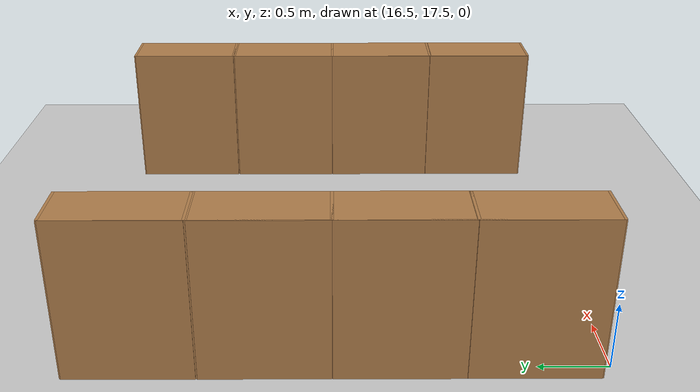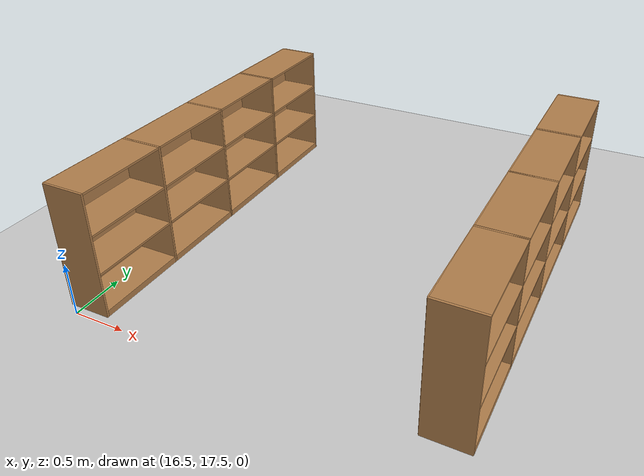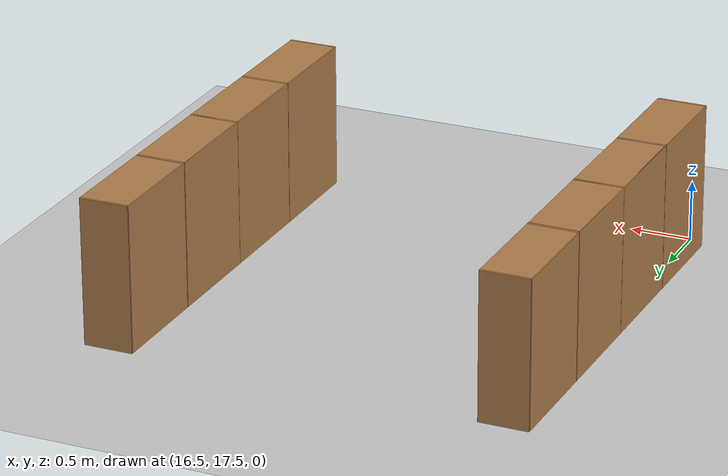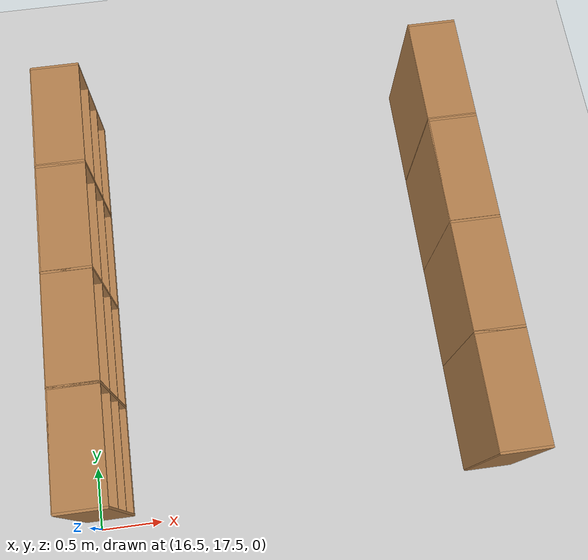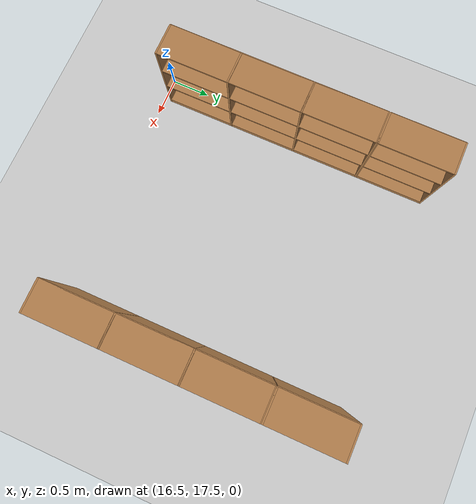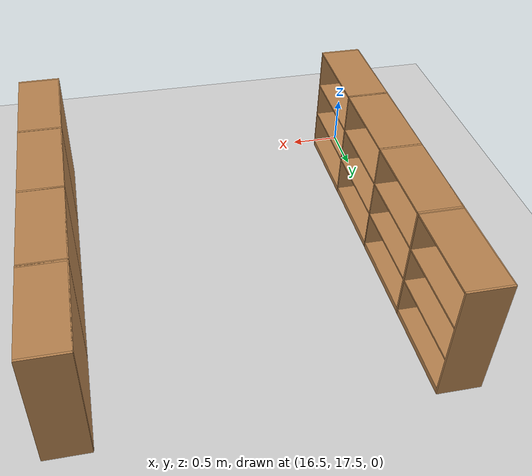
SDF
<sdf version="1.6">
 <world name="default">
  <model name="ground_plane">
   <static>1</static>
   <link name="link">
    <collision name="collision">
     <geometry><plane><normal>0 0 1</normal><size>100 100</size></plane></geometry>
     <surface><friction><ode><mu>100</mu><mu2>50</mu2></ode></friction></surface>
    </collision>
    <visual name="visual">
     <cast_shadows>0</cast_shadows>
     <geometry><plane><normal>0 0 1</normal><size>100 100</size></plane></geometry>
     <material>
      <script><uri>file://media/materials/scripts/gazebo.material</uri><name>Gazebo/Grey</name></script>
     </material>
    </visual>
   </link>
  </model>
  <model name="Bookself-4_clone_14">
   <model name="Bookself-3">
    <model name="bookshelf_0">
     <static>1</static>
     <link name="link">
      <inertial><mass>1</mass></inertial>
      <collision name="back">
       <pose>0 0.005 0.6 0 -0 0</pose>
       <geometry><box><size>0.9 0.01 1.2</size></box></geometry>
      </collision>
      <visual name="visual1">
       <pose>0 0.005 0.6 0 -0 0</pose>
       <geometry><box><size>0.9 0.01 1.2</size></box></geometry>
       <material>
        <script><uri>file://media/materials/scripts/gazebo.material</uri><name>Gazebo/Wood</name></script>
       </material>
      </visual>
      <collision name="left_side">
       <pose>0.45 -0.195 0.6 0 -0 0</pose>
       <geometry><box><size>0.02 0.4 1.2</size></box></geometry>
      </collision>
      <visual name="visual2">
       <pose>0.45 -0.195 0.6 0 -0 0</pose>
       <geometry><box><size>0.02 0.4 1.2</size></box></geometry>
       <material>
        <script><uri>file://media/materials/scripts/gazebo.material</uri><name>Gazebo/Wood</name></script>
       </material>
      </visual>
      <collision name="right_side">
       <pose>-0.45 -0.195 0.6 0 -0 0</pose>
       <geometry><box><size>0.02 0.4 1.2</size></box></geometry>
      </collision>
      <visual name="visual3">
       <pose>-0.45 -0.195 0.6 0 -0 0</pose>
       <geometry><box><size>0.02 0.4 1.2</size></box></geometry>
       <material>
        <script><uri>file://media/materials/scripts/gazebo.material</uri><name>Gazebo/Wood</name></script>
       </material>
      </visual>
      <collision name="bottom">
       <pose>0 -0.195 0.03 0 -0 0</pose>
       <geometry><box><size>0.88 0.4 0.06</size></box></geometry>
      </collision>
      <visual name="visual4">
       <pose>0 -0.195 0.03 0 -0 0</pose>
       <geometry><box><size>0.88 0.4 0.06</size></box></geometry>
       <material>
        <script><uri>file://media/materials/scripts/gazebo.material</uri><name>Gazebo/Wood</name></script>
       </material>
      </visual>
      <collision name="top">
       <pose>0 -0.195 1.19 0 -0 0</pose>
       <geometry><box><size>0.88 0.4 0.02</size></box></geometry>
      </collision>
      <visual name="visual5">
       <pose>0 -0.195 1.19 0 -0 0</pose>
       <geometry><box><size>0.88 0.4 0.02</size></box></geometry>
       <material>
        <script><uri>file://media/materials/scripts/gazebo.material</uri><name>Gazebo/Wood</name></script>
       </material>
      </visual>
      <collision name="low_shelf">
       <pose>0 -0.195 0.43 0 -0 0</pose>
       <geometry><box><size>0.88 0.4 0.02</size></box></geometry>
      </collision>
      <visual name="visual6">
       <pose>0 -0.195 0.43 0 -0 0</pose>
       <geometry><box><size>0.88 0.4 0.02</size></box></geometry>
       <material>
        <script><uri>file://media/materials/scripts/gazebo.material</uri><name>Gazebo/Wood</name></script>
       </material>
      </visual>
      <collision name="high_shelf">
       <pose>0 -0.195 0.8 0 -0 0</pose>
       <geometry><box><size>0.88 0.4 0.02</size></box></geometry>
      </collision>
      <visual name="visual7">
       <pose>0 -0.195 0.8 0 -0 0</pose>
       <geometry><box><size>0.88 0.4 0.02</size></box></geometry>
       <material>
        <script><uri>file://media/materials/scripts/gazebo.material</uri><name>Gazebo/Wood</name></script>
       </material>
      </visual>
     </link>
     <pose>-0.903039 0 0 0 -0 0</pose>
    </model>
    <model name="bookshelf_1">
     <static>1</static>
     <link name="link">
      <inertial><mass>1</mass></inertial>
      <collision name="back">
       <pose>0 0.005 0.6 0 -0 0</pose>
       <geometry><box><size>0.9 0.01 1.2</size></box></geometry>
      </collision>
      <visual name="visual1">
       <pose>0 0.005 0.6 0 -0 0</pose>
       <geometry><box><size>0.9 0.01 1.2</size></box></geometry>
       <material>
        <script><uri>file://media/materials/scripts/gazebo.material</uri><name>Gazebo/Wood</name></script>
       </material>
      </visual>
      <collision name="left_side">
       <pose>0.45 -0.195 0.6 0 -0 0</pose>
       <geometry><box><size>0.02 0.4 1.2</size></box></geometry>
      </collision>
      <visual name="visual2">
       <pose>0.45 -0.195 0.6 0 -0 0</pose>
       <geometry><box><size>0.02 0.4 1.2</size></box></geometry>
       <material>
        <script><uri>file://media/materials/scripts/gazebo.material</uri><name>Gazebo/Wood</name></script>
       </material>
      </visual>
      <collision name="right_side">
       <pose>-0.45 -0.195 0.6 0 -0 0</pose>
       <geometry><box><size>0.02 0.4 1.2</size></box></geometry>
      </collision>
      <visual name="visual3">
       <pose>-0.45 -0.195 0.6 0 -0 0</pose>
       <geometry><box><size>0.02 0.4 1.2</size></box></geometry>
       <material>
        <script><uri>file://media/materials/scripts/gazebo.material</uri><name>Gazebo/Wood</name></script>
       </material>
      </visual>
      <collision name="bottom">
       <pose>0 -0.195 0.03 0 -0 0</pose>
       <geometry><box><size>0.88 0.4 0.06</size></box></geometry>
      </collision>
      <visual name="visual4">
       <pose>0 -0.195 0.03 0 -0 0</pose>
       <geometry><box><size>0.88 0.4 0.06</size></box></geometry>
       <material>
        <script><uri>file://media/materials/scripts/gazebo.material</uri><name>Gazebo/Wood</name></script>
       </material>
      </visual>
      <collision name="top">
       <pose>0 -0.195 1.19 0 -0 0</pose>
       <geometry><box><size>0.88 0.4 0.02</size></box></geometry>
      </collision>
      <visual name="visual5">
       <pose>0 -0.195 1.19 0 -0 0</pose>
       <geometry><box><size>0.88 0.4 0.02</size></box></geometry>
       <material>
        <script><uri>file://media/materials/scripts/gazebo.material</uri><name>Gazebo/Wood</name></script>
       </material>
      </visual>
      <collision name="low_shelf">
       <pose>0 -0.195 0.43 0 -0 0</pose>
       <geometry><box><size>0.88 0.4 0.02</size></box></geometry>
      </collision>
      <visual name="visual6">
       <pose>0 -0.195 0.43 0 -0 0</pose>
       <geometry><box><size>0.88 0.4 0.02</size></box></geometry>
       <material>
        <script><uri>file://media/materials/scripts/gazebo.material</uri><name>Gazebo/Wood</name></script>
       </material>
      </visual>
      <collision name="high_shelf">
       <pose>0 -0.195 0.8 0 -0 0</pose>
       <geometry><box><size>0.88 0.4 0.02</size></box></geometry>
      </collision>
      <visual name="visual7">
       <pose>0 -0.195 0.8 0 -0 0</pose>
       <geometry><box><size>0.88 0.4 0.02</size></box></geometry>
       <material>
        <script><uri>file://media/materials/scripts/gazebo.material</uri><name>Gazebo/Wood</name></script>
       </material>
      </visual>
     </link>
     <pose>0.000535 0 0 0 -0 0</pose>
    </model>
    <model name="bookshelf_1_clone">
     <static>1</static>
     <link name="link">
      <inertial><mass>1</mass></inertial>
      <collision name="back">
       <pose>0 0.005 0.6 0 -0 0</pose>
       <geometry><box><size>0.9 0.01 1.2</size></box></geometry>
      </collision>
      <visual name="visual1">
       <pose>0 0.005 0.6 0 -0 0</pose>
       <geometry><box><size>0.9 0.01 1.2</size></box></geometry>
       <material>
        <script><uri>file://media/materials/scripts/gazebo.material</uri><name>Gazebo/Wood</name></script>
       </material>
      </visual>
      <collision name="left_side">
       <pose>0.45 -0.195 0.6 0 -0 0</pose>
       <geometry><box><size>0.02 0.4 1.2</size></box></geometry>
      </collision>
      <visual name="visual2">
       <pose>0.45 -0.195 0.6 0 -0 0</pose>
       <geometry><box><size>0.02 0.4 1.2</size></box></geometry>
       <material>
        <script><uri>file://media/materials/scripts/gazebo.material</uri><name>Gazebo/Wood</name></script>
       </material>
      </visual>
      <collision name="right_side">
       <pose>-0.45 -0.195 0.6 0 -0 0</pose>
       <geometry><box><size>0.02 0.4 1.2</size></box></geometry>
      </collision>
      <visual name="visual3">
       <pose>-0.45 -0.195 0.6 0 -0 0</pose>
       <geometry><box><size>0.02 0.4 1.2</size></box></geometry>
       <material>
        <script><uri>file://media/materials/scripts/gazebo.material</uri><name>Gazebo/Wood</name></script>
       </material>
      </visual>
      <collision name="bottom">
       <pose>0 -0.195 0.03 0 -0 0</pose>
       <geometry><box><size>0.88 0.4 0.06</size></box></geometry>
      </collision>
      <visual name="visual4">
       <pose>0 -0.195 0.03 0 -0 0</pose>
       <geometry><box><size>0.88 0.4 0.06</size></box></geometry>
       <material>
        <script><uri>file://media/materials/scripts/gazebo.material</uri><name>Gazebo/Wood</name></script>
       </material>
      </visual>
      <collision name="top">
       <pose>0 -0.195 1.19 0 -0 0</pose>
       <geometry><box><size>0.88 0.4 0.02</size></box></geometry>
      </collision>
      <visual name="visual5">
       <pose>0 -0.195 1.19 0 -0 0</pose>
       <geometry><box><size>0.88 0.4 0.02</size></box></geometry>
       <material>
        <script><uri>file://media/materials/scripts/gazebo.material</uri><name>Gazebo/Wood</name></script>
       </material>
      </visual>
      <collision name="low_shelf">
       <pose>0 -0.195 0.43 0 -0 0</pose>
       <geometry><box><size>0.88 0.4 0.02</size></box></geometry>
      </collision>
      <visual name="visual6">
       <pose>0 -0.195 0.43 0 -0 0</pose>
       <geometry><box><size>0.88 0.4 0.02</size></box></geometry>
       <material>
        <script><uri>file://media/materials/scripts/gazebo.material</uri><name>Gazebo/Wood</name></script>
       </material>
      </visual>
      <collision name="high_shelf">
       <pose>0 -0.195 0.8 0 -0 0</pose>
       <geometry><box><size>0.88 0.4 0.02</size></box></geometry>
      </collision>
      <visual name="visual7">
       <pose>0 -0.195 0.8 0 -0 0</pose>
       <geometry><box><size>0.88 0.4 0.02</size></box></geometry>
       <material>
        <script><uri>file://media/materials/scripts/gazebo.material</uri><name>Gazebo/Wood</name></script>
       </material>
      </visual>
     </link>
     <pose>0.902502 0 0 0 -0 0</pose>
    </model>
    <static>1</static>
    <pose>-0.906894 3e-05 0 0 -0 0</pose>
   </model>
   <model name="bookshelf">
    <static>1</static>
    <link name="link">
     <inertial><mass>1</mass></inertial>
     <collision name="back">
      <pose>0 0.005 0.6 0 -0 0</pose>
      <geometry><box><size>0.9 0.01 1.2</size></box></geometry>
     </collision>
     <visual name="visual1">
      <pose>0 0.005 0.6 0 -0 0</pose>
      <geometry><box><size>0.9 0.01 1.2</size></box></geometry>
      <material>
       <script><uri>file://media/materials/scripts/gazebo.material</uri><name>Gazebo/Wood</name></script>
      </material>
     </visual>
     <collision name="left_side">
      <pose>0.45 -0.195 0.6 0 -0 0</pose>
      <geometry><box><size>0.02 0.4 1.2</size></box></geometry>
     </collision>
     <visual name="visual2">
      <pose>0.45 -0.195 0.6 0 -0 0</pose>
      <geometry><box><size>0.02 0.4 1.2</size></box></geometry>
      <material>
       <script><uri>file://media/materials/scripts/gazebo.material</uri><name>Gazebo/Wood</name></script>
      </material>
     </visual>
     <collision name="right_side">
      <pose>-0.45 -0.195 0.6 0 -0 0</pose>
      <geometry><box><size>0.02 0.4 1.2</size></box></geometry>
     </collision>
     <visual name="visual3">
      <pose>-0.45 -0.195 0.6 0 -0 0</pose>
      <geometry><box><size>0.02 0.4 1.2</size></box></geometry>
      <material>
       <script><uri>file://media/materials/scripts/gazebo.material</uri><name>Gazebo/Wood</name></script>
      </material>
     </visual>
     <collision name="bottom">
      <pose>0 -0.195 0.03 0 -0 0</pose>
      <geometry><box><size>0.88 0.4 0.06</size></box></geometry>
     </collision>
     <visual name="visual4">
      <pose>0 -0.195 0.03 0 -0 0</pose>
      <geometry><box><size>0.88 0.4 0.06</size></box></geometry>
      <material>
       <script><uri>file://media/materials/scripts/gazebo.material</uri><name>Gazebo/Wood</name></script>
      </material>
     </visual>
     <collision name="top">
      <pose>0 -0.195 1.19 0 -0 0</pose>
      <geometry><box><size>0.88 0.4 0.02</size></box></geometry>
     </collision>
     <visual name="visual5">
      <pose>0 -0.195 1.19 0 -0 0</pose>
      <geometry><box><size>0.88 0.4 0.02</size></box></geometry>
      <material>
       <script><uri>file://media/materials/scripts/gazebo.material</uri><name>Gazebo/Wood</name></script>
      </material>
     </visual>
     <collision name="low_shelf">
      <pose>0 -0.195 0.43 0 -0 0</pose>
      <geometry><box><size>0.88 0.4 0.02</size></box></geometry>
     </collision>
     <visual name="visual6">
      <pose>0 -0.195 0.43 0 -0 0</pose>
      <geometry><box><size>0.88 0.4 0.02</size></box></geometry>
      <material>
       <script><uri>file://media/materials/scripts/gazebo.material</uri><name>Gazebo/Wood</name></script>
      </material>
     </visual>
     <collision name="high_shelf">
      <pose>0 -0.195 0.8 0 -0 0</pose>
      <geometry><box><size>0.88 0.4 0.02</size></box></geometry>
     </collision>
     <visual name="visual7">
      <pose>0 -0.195 0.8 0 -0 0</pose>
      <geometry><box><size>0.88 0.4 0.02</size></box></geometry>
      <material>
       <script><uri>file://media/materials/scripts/gazebo.material</uri><name>Gazebo/Wood</name></script>
      </material>
     </visual>
    </link>
    <pose>0.906808 3e-05 0 0 -0 0</pose>
   </model>
   <static>0</static>
   <pose>19.5922 19.8438 0 0 -0 1.5707</pose>
  </model>
  <model name="Bookself-4_clone_14_clone">
   <model name="Bookself-3">
    <model name="bookshelf_0">
     <static>1</static>
     <link name="link">
      <inertial><mass>1</mass></inertial>
      <collision name="back">
       <pose>0 0.005 0.6 0 -0 0</pose>
       <geometry><box><size>0.9 0.01 1.2</size></box></geometry>
      </collision>
      <visual name="visual1">
       <pose>0 0.005 0.6 0 -0 0</pose>
       <geometry><box><size>0.9 0.01 1.2</size></box></geometry>
       <material>
        <script><uri>file://media/materials/scripts/gazebo.material</uri><name>Gazebo/Wood</name></script>
       </material>
      </visual>
      <collision name="left_side">
       <pose>0.45 -0.195 0.6 0 -0 0</pose>
       <geometry><box><size>0.02 0.4 1.2</size></box></geometry>
      </collision>
      <visual name="visual2">
       <pose>0.45 -0.195 0.6 0 -0 0</pose>
       <geometry><box><size>0.02 0.4 1.2</size></box></geometry>
       <material>
        <script><uri>file://media/materials/scripts/gazebo.material</uri><name>Gazebo/Wood</name></script>
       </material>
      </visual>
      <collision name="right_side">
       <pose>-0.45 -0.195 0.6 0 -0 0</pose>
       <geometry><box><size>0.02 0.4 1.2</size></box></geometry>
      </collision>
      <visual name="visual3">
       <pose>-0.45 -0.195 0.6 0 -0 0</pose>
       <geometry><box><size>0.02 0.4 1.2</size></box></geometry>
       <material>
        <script><uri>file://media/materials/scripts/gazebo.material</uri><name>Gazebo/Wood</name></script>
       </material>
      </visual>
      <collision name="bottom">
       <pose>0 -0.195 0.03 0 -0 0</pose>
       <geometry><box><size>0.88 0.4 0.06</size></box></geometry>
      </collision>
      <visual name="visual4">
       <pose>0 -0.195 0.03 0 -0 0</pose>
       <geometry><box><size>0.88 0.4 0.06</size></box></geometry>
       <material>
        <script><uri>file://media/materials/scripts/gazebo.material</uri><name>Gazebo/Wood</name></script>
       </material>
      </visual>
      <collision name="top">
       <pose>0 -0.195 1.19 0 -0 0</pose>
       <geometry><box><size>0.88 0.4 0.02</size></box></geometry>
      </collision>
      <visual name="visual5">
       <pose>0 -0.195 1.19 0 -0 0</pose>
       <geometry><box><size>0.88 0.4 0.02</size></box></geometry>
       <material>
        <script><uri>file://media/materials/scripts/gazebo.material</uri><name>Gazebo/Wood</name></script>
       </material>
      </visual>
      <collision name="low_shelf">
       <pose>0 -0.195 0.43 0 -0 0</pose>
       <geometry><box><size>0.88 0.4 0.02</size></box></geometry>
      </collision>
      <visual name="visual6">
       <pose>0 -0.195 0.43 0 -0 0</pose>
       <geometry><box><size>0.88 0.4 0.02</size></box></geometry>
       <material>
        <script><uri>file://media/materials/scripts/gazebo.material</uri><name>Gazebo/Wood</name></script>
       </material>
      </visual>
      <collision name="high_shelf">
       <pose>0 -0.195 0.8 0 -0 0</pose>
       <geometry><box><size>0.88 0.4 0.02</size></box></geometry>
      </collision>
      <visual name="visual7">
       <pose>0 -0.195 0.8 0 -0 0</pose>
       <geometry><box><size>0.88 0.4 0.02</size></box></geometry>
       <material>
        <script><uri>file://media/materials/scripts/gazebo.material</uri><name>Gazebo/Wood</name></script>
       </material>
      </visual>
     </link>
     <pose>-0.903039 0 0 0 -0 0</pose>
    </model>
    <model name="bookshelf_1">
     <static>1</static>
     <link name="link">
      <inertial><mass>1</mass></inertial>
      <collision name="back">
       <pose>0 0.005 0.6 0 -0 0</pose>
       <geometry><box><size>0.9 0.01 1.2</size></box></geometry>
      </collision>
      <visual name="visual1">
       <pose>0 0.005 0.6 0 -0 0</pose>
       <geometry><box><size>0.9 0.01 1.2</size></box></geometry>
       <material>
        <script><uri>file://media/materials/scripts/gazebo.material</uri><name>Gazebo/Wood</name></script>
       </material>
      </visual>
      <collision name="left_side">
       <pose>0.45 -0.195 0.6 0 -0 0</pose>
       <geometry><box><size>0.02 0.4 1.2</size></box></geometry>
      </collision>
      <visual name="visual2">
       <pose>0.45 -0.195 0.6 0 -0 0</pose>
       <geometry><box><size>0.02 0.4 1.2</size></box></geometry>
       <material>
        <script><uri>file://media/materials/scripts/gazebo.material</uri><name>Gazebo/Wood</name></script>
       </material>
      </visual>
      <collision name="right_side">
       <pose>-0.45 -0.195 0.6 0 -0 0</pose>
       <geometry><box><size>0.02 0.4 1.2</size></box></geometry>
      </collision>
      <visual name="visual3">
       <pose>-0.45 -0.195 0.6 0 -0 0</pose>
       <geometry><box><size>0.02 0.4 1.2</size></box></geometry>
       <material>
        <script><uri>file://media/materials/scripts/gazebo.material</uri><name>Gazebo/Wood</name></script>
       </material>
      </visual>
      <collision name="bottom">
       <pose>0 -0.195 0.03 0 -0 0</pose>
       <geometry><box><size>0.88 0.4 0.06</size></box></geometry>
      </collision>
      <visual name="visual4">
       <pose>0 -0.195 0.03 0 -0 0</pose>
       <geometry><box><size>0.88 0.4 0.06</size></box></geometry>
       <material>
        <script><uri>file://media/materials/scripts/gazebo.material</uri><name>Gazebo/Wood</name></script>
       </material>
      </visual>
      <collision name="top">
       <pose>0 -0.195 1.19 0 -0 0</pose>
       <geometry><box><size>0.88 0.4 0.02</size></box></geometry>
      </collision>
      <visual name="visual5">
       <pose>0 -0.195 1.19 0 -0 0</pose>
       <geometry><box><size>0.88 0.4 0.02</size></box></geometry>
       <material>
        <script><uri>file://media/materials/scripts/gazebo.material</uri><name>Gazebo/Wood</name></script>
       </material>
      </visual>
      <collision name="low_shelf">
       <pose>0 -0.195 0.43 0 -0 0</pose>
       <geometry><box><size>0.88 0.4 0.02</size></box></geometry>
      </collision>
      <visual name="visual6">
       <pose>0 -0.195 0.43 0 -0 0</pose>
       <geometry><box><size>0.88 0.4 0.02</size></box></geometry>
       <material>
        <script><uri>file://media/materials/scripts/gazebo.material</uri><name>Gazebo/Wood</name></script>
       </material>
      </visual>
      <collision name="high_shelf">
       <pose>0 -0.195 0.8 0 -0 0</pose>
       <geometry><box><size>0.88 0.4 0.02</size></box></geometry>
      </collision>
      <visual name="visual7">
       <pose>0 -0.195 0.8 0 -0 0</pose>
       <geometry><box><size>0.88 0.4 0.02</size></box></geometry>
       <material>
        <script><uri>file://media/materials/scripts/gazebo.material</uri><name>Gazebo/Wood</name></script>
       </material>
      </visual>
     </link>
     <pose>0.000535 0 0 0 -0 0</pose>
    </model>
    <model name="bookshelf_1_clone">
     <static>1</static>
     <link name="link">
      <inertial><mass>1</mass></inertial>
      <collision name="back">
       <pose>0 0.005 0.6 0 -0 0</pose>
       <geometry><box><size>0.9 0.01 1.2</size></box></geometry>
      </collision>
      <visual name="visual1">
       <pose>0 0.005 0.6 0 -0 0</pose>
       <geometry><box><size>0.9 0.01 1.2</size></box></geometry>
       <material>
        <script><uri>file://media/materials/scripts/gazebo.material</uri><name>Gazebo/Wood</name></script>
       </material>
      </visual>
      <collision name="left_side">
       <pose>0.45 -0.195 0.6 0 -0 0</pose>
       <geometry><box><size>0.02 0.4 1.2</size></box></geometry>
      </collision>
      <visual name="visual2">
       <pose>0.45 -0.195 0.6 0 -0 0</pose>
       <geometry><box><size>0.02 0.4 1.2</size></box></geometry>
       <material>
        <script><uri>file://media/materials/scripts/gazebo.material</uri><name>Gazebo/Wood</name></script>
       </material>
      </visual>
      <collision name="right_side">
       <pose>-0.45 -0.195 0.6 0 -0 0</pose>
       <geometry><box><size>0.02 0.4 1.2</size></box></geometry>
      </collision>
      <visual name="visual3">
       <pose>-0.45 -0.195 0.6 0 -0 0</pose>
       <geometry><box><size>0.02 0.4 1.2</size></box></geometry>
       <material>
        <script><uri>file://media/materials/scripts/gazebo.material</uri><name>Gazebo/Wood</name></script>
       </material>
      </visual>
      <collision name="bottom">
       <pose>0 -0.195 0.03 0 -0 0</pose>
       <geometry><box><size>0.88 0.4 0.06</size></box></geometry>
      </collision>
      <visual name="visual4">
       <pose>0 -0.195 0.03 0 -0 0</pose>
       <geometry><box><size>0.88 0.4 0.06</size></box></geometry>
       <material>
        <script><uri>file://media/materials/scripts/gazebo.material</uri><name>Gazebo/Wood</name></script>
       </material>
      </visual>
      <collision name="top">
       <pose>0 -0.195 1.19 0 -0 0</pose>
       <geometry><box><size>0.88 0.4 0.02</size></box></geometry>
      </collision>
      <visual name="visual5">
       <pose>0 -0.195 1.19 0 -0 0</pose>
       <geometry><box><size>0.88 0.4 0.02</size></box></geometry>
       <material>
        <script><uri>file://media/materials/scripts/gazebo.material</uri><name>Gazebo/Wood</name></script>
       </material>
      </visual>
      <collision name="low_shelf">
       <pose>0 -0.195 0.43 0 -0 0</pose>
       <geometry><box><size>0.88 0.4 0.02</size></box></geometry>
      </collision>
      <visual name="visual6">
       <pose>0 -0.195 0.43 0 -0 0</pose>
       <geometry><box><size>0.88 0.4 0.02</size></box></geometry>
       <material>
        <script><uri>file://media/materials/scripts/gazebo.material</uri><name>Gazebo/Wood</name></script>
       </material>
      </visual>
      <collision name="high_shelf">
       <pose>0 -0.195 0.8 0 -0 0</pose>
       <geometry><box><size>0.88 0.4 0.02</size></box></geometry>
      </collision>
      <visual name="visual7">
       <pose>0 -0.195 0.8 0 -0 0</pose>
       <geometry><box><size>0.88 0.4 0.02</size></box></geometry>
       <material>
        <script><uri>file://media/materials/scripts/gazebo.material</uri><name>Gazebo/Wood</name></script>
       </material>
      </visual>
     </link>
     <pose>0.902502 0 0 0 -0 0</pose>
    </model>
    <static>1</static>
    <pose>-0.906894 3e-05 0 0 -0 0</pose>
   </model>
   <model name="bookshelf">
    <static>1</static>
    <link name="link">
     <inertial><mass>1</mass></inertial>
     <collision name="back">
      <pose>0 0.005 0.6 0 -0 0</pose>
      <geometry><box><size>0.9 0.01 1.2</size></box></geometry>
     </collision>
     <visual name="visual1">
      <pose>0 0.005 0.6 0 -0 0</pose>
      <geometry><box><size>0.9 0.01 1.2</size></box></geometry>
      <material>
       <script><uri>file://media/materials/scripts/gazebo.material</uri><name>Gazebo/Wood</name></script>
      </material>
     </visual>
     <collision name="left_side">
      <pose>0.45 -0.195 0.6 0 -0 0</pose>
      <geometry><box><size>0.02 0.4 1.2</size></box></geometry>
     </collision>
     <visual name="visual2">
      <pose>0.45 -0.195 0.6 0 -0 0</pose>
      <geometry><box><size>0.02 0.4 1.2</size></box></geometry>
      <material>
       <script><uri>file://media/materials/scripts/gazebo.material</uri><name>Gazebo/Wood</name></script>
      </material>
     </visual>
     <collision name="right_side">
      <pose>-0.45 -0.195 0.6 0 -0 0</pose>
      <geometry><box><size>0.02 0.4 1.2</size></box></geometry>
     </collision>
     <visual name="visual3">
      <pose>-0.45 -0.195 0.6 0 -0 0</pose>
      <geometry><box><size>0.02 0.4 1.2</size></box></geometry>
      <material>
       <script><uri>file://media/materials/scripts/gazebo.material</uri><name>Gazebo/Wood</name></script>
      </material>
     </visual>
     <collision name="bottom">
      <pose>0 -0.195 0.03 0 -0 0</pose>
      <geometry><box><size>0.88 0.4 0.06</size></box></geometry>
     </collision>
     <visual name="visual4">
      <pose>0 -0.195 0.03 0 -0 0</pose>
      <geometry><box><size>0.88 0.4 0.06</size></box></geometry>
      <material>
       <script><uri>file://media/materials/scripts/gazebo.material</uri><name>Gazebo/Wood</name></script>
      </material>
     </visual>
     <collision name="top">
      <pose>0 -0.195 1.19 0 -0 0</pose>
      <geometry><box><size>0.88 0.4 0.02</size></box></geometry>
     </collision>
     <visual name="visual5">
      <pose>0 -0.195 1.19 0 -0 0</pose>
      <geometry><box><size>0.88 0.4 0.02</size></box></geometry>
      <material>
       <script><uri>file://media/materials/scripts/gazebo.material</uri><name>Gazebo/Wood</name></script>
      </material>
     </visual>
     <collision name="low_shelf">
      <pose>0 -0.195 0.43 0 -0 0</pose>
      <geometry><box><size>0.88 0.4 0.02</size></box></geometry>
     </collision>
     <visual name="visual6">
      <pose>0 -0.195 0.43 0 -0 0</pose>
      <geometry><box><size>0.88 0.4 0.02</size></box></geometry>
      <material>
       <script><uri>file://media/materials/scripts/gazebo.material</uri><name>Gazebo/Wood</name></script>
      </material>
     </visual>
     <collision name="high_shelf">
      <pose>0 -0.195 0.8 0 -0 0</pose>
      <geometry><box><size>0.88 0.4 0.02</size></box></geometry>
     </collision>
     <visual name="visual7">
      <pose>0 -0.195 0.8 0 -0 0</pose>
      <geometry><box><size>0.88 0.4 0.02</size></box></geometry>
      <material>
       <script><uri>file://media/materials/scripts/gazebo.material</uri><name>Gazebo/Wood</name></script>
      </material>
     </visual>
    </link>
    <pose>0.906808 3e-05 0 0 -0 0</pose>
   </model>
   <static>0</static>
   <pose>16.3845 19.8438 0 0 -0 1.5707</pose>
  </model>
 </world>
</sdf>
